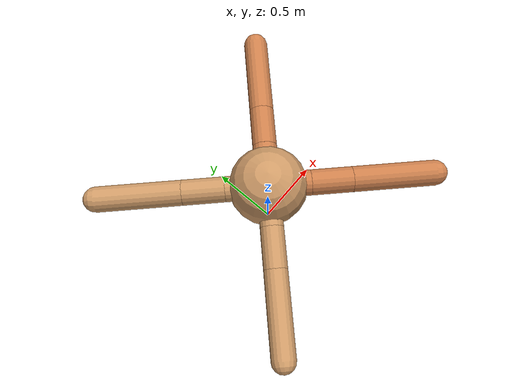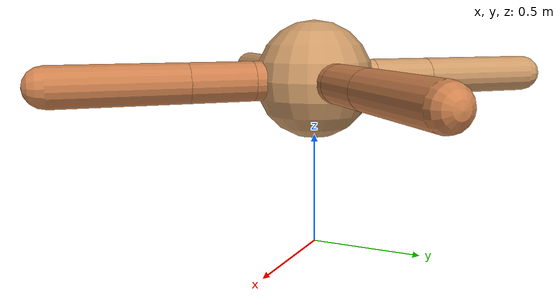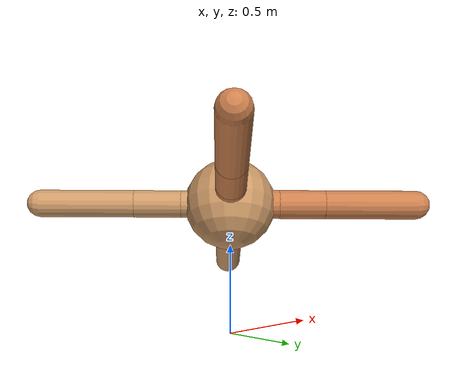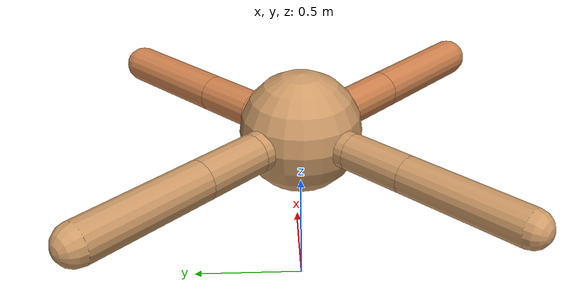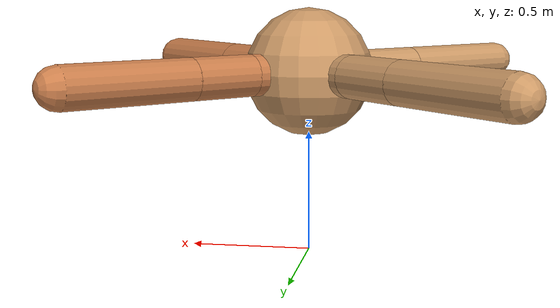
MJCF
<?xml version="1.0" ?>
<mujoco model="ant">

	<compiler angle="degree" coordinate="local" inertiafromgeom="true"/>

	<option integrator="RK4" timestep="0.01"/>

	<custom>

		<numeric data="0.0 0.0 0.55 1.0 0.0 0.0 0.0 0.0 1.0 0.0 -1.0 0.0 -1.0 0.0 1.0" name="init_qpos"/>

	</custom>

	<default>

		<joint armature="1" damping="1" limited="true"/>

		<geom conaffinity="0" condim="3" density="5.0" friction="1.5 0.1 0.1" margin="0.01" rgba="0.8 0.6 0.4 1"/>

	</default>

	<worldbody>

		<body name="torso" pos="0 0 0.75">

			<geom name="torso_geom" pos="0 0 0" size="0.2617408218277308" type="sphere"/>

			<!--joint armature="0" damping="0" limited="false" margin="0.01" name="root" pos="0 0 0" type="free"/-->

			<body name="front_left_leg" pos="0 0 0">

				<geom fromto="0 0 0 0.2 0.2 0" name="aux_1_geom" size="0.08325274731597256" type="capsule" rgba=".8 .5 .3 1"/>

				<body name="aux_1" pos="0.2 0.2 0">

					<joint axis="0 0 1" name="hip_1" pos="0.0 0.0 0.0" range="-40 40" type="hinge"/>

					<geom fromto="0 0 0 0.18617234302204594 0.18617234302204594 0" name="left_leg_geom" size="0.08325274731597256" type="capsule" rgba=".8 .5 .3 1"/>

					<body pos="0.18617234302204594 0.18617234302204594 0" name="front_left_foot">

						<joint axis="-1 1 0" name="ankle_1" pos="0.0 0.0 0.0" range="30 100" type="hinge"/>

						<geom fromto="0 0 0 0.3723446860440919 0.3723446860440919 0" name="left_ankle_geom" size="0.08325274731597256" type="capsule" rgba=".8 .5 .3 1"/>

					</body>

				</body>

			</body>

			<body name="front_right_leg" pos="0 0 0">

				<geom fromto="0 0 0 -0.2 0.2 0" name="aux_2_geom" size="0.08567397258932069" type="capsule"/>

				<body name="aux_2" pos="-0.2 0.2 0">

					<joint axis="0 0 1" name="hip_2" pos="0.0 0.0 0.0" range="-40 40" type="hinge"/>

					<geom fromto="0 0 0 -0.19821010096005415 0.19821010096005415 0" name="right_leg_geom" size="0.08567397258932069" type="capsule"/>

					<body pos="-0.19821010096005415 0.19821010096005415 0" name="front_right_foot">

						<joint axis="1 1 0" name="ankle_2" pos="0.0 0.0 0.0" range="-100 -30" type="hinge"/>

						<geom fromto="0 0 0 -0.3964202019201083 0.3964202019201083 0" name="right_ankle_geom" size="0.08567397258932069" type="capsule"/>

					</body>

				</body>

			</body>

			<body name="left_back_leg" pos="0 0 0">

				<geom fromto="0 0 0 -0.2 -0.2 0" name="aux_3_geom" size="0.07849950293928981" type="capsule"/>

				<body name="aux_3" pos="-0.2 -0.2 0">

					<joint axis="0 0 1" name="hip_3" pos="0.0 0.0 0.0" range="-40 40" type="hinge"/>

					<geom fromto="0 0 0 -0.19012292239436845 -0.19012292239436845 0" name="back_leg_geom" size="0.07849950293928981" type="capsule"/>

					<body pos="-0.19012292239436845 -0.19012292239436845 0" name="left_back_foot">

						<joint axis="-1 1 0" name="ankle_3" pos="0.0 0.0 0.0" range="-100 -30" type="hinge"/>

						<geom fromto="0 0 0 -0.3802458447887369 -0.3802458447887369 0" name="third_ankle_geom" size="0.07849950293928981" type="capsule"/>

					</body>

				</body>

			</body>

			<body name="right_back_leg" pos="0 0 0">

				<geom fromto="0 0 0 0.2 -0.2 0" name="aux_4_geom" size="0.0860743734035281" type="capsule" rgba=".8 .5 .3 1"/>

				<body name="aux_4" pos="0.2 -0.2 0">

					<joint axis="0 0 1" name="hip_4" pos="0.0 0.0 0.0" range="-40 40" type="hinge"/>

					<geom fromto="0 0 0 0.19375373288669204 -0.19375373288669204 0" name="rightback_leg_geom" size="0.0860743734035281" type="capsule" rgba=".8 .5 .3 1"/>

					<body pos="0.19375373288669204 -0.19375373288669204 0" name="right_back_foot">

						<joint axis="1 1 0" name="ankle_4" pos="0.0 0.0 0.0" range="30 100" type="hinge"/>

						<geom fromto="0 0 0 0.3875074657733841 -0.3875074657733841 0" name="fourth_ankle_geom" size="0.0860743734035281" type="capsule" rgba=".8 .5 .3 1"/>

					</body>

				</body>

			</body>

		</body>

	</worldbody>

	<actuator>

		<motor ctrllimited="true" ctrlrange="-1.0 1.0" joint="hip_4" gear="150"/>

		<motor ctrllimited="true" ctrlrange="-1.0 1.0" joint="ankle_4" gear="150"/>

		<motor ctrllimited="true" ctrlrange="-1.0 1.0" joint="hip_1" gear="150"/>

		<motor ctrllimited="true" ctrlrange="-1.0 1.0" joint="ankle_1" gear="150"/>

		<motor ctrllimited="true" ctrlrange="-1.0 1.0" joint="hip_2" gear="150"/>

		<motor ctrllimited="true" ctrlrange="-1.0 1.0" joint="ankle_2" gear="150"/>

		<motor ctrllimited="true" ctrlrange="-1.0 1.0" joint="hip_3" gear="150"/>

		<motor ctrllimited="true" ctrlrange="-1.0 1.0" joint="ankle_3" gear="150"/>

	</actuator>

</mujoco>
